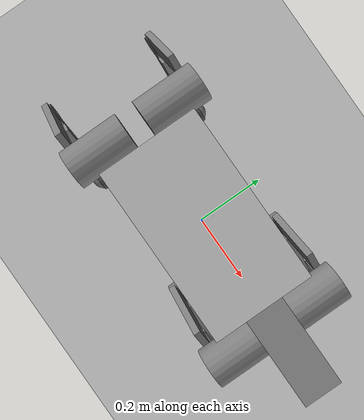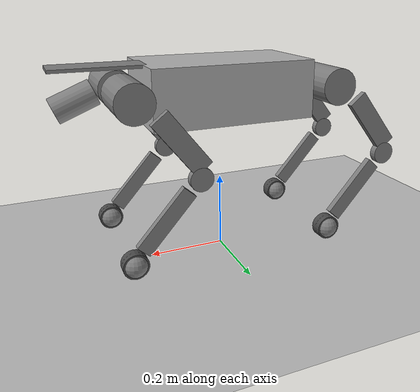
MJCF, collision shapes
<mujoco model="ayg">
  <compiler angle="radian" meshdir="../../meshes/1.3"/>

  <option timestep="0.001" iterations="50" solver="Newton" gravity="0 0 -9.81"
          noslip_iterations="5"/>

  <default>
    <joint damping="0" armature="0.02" frictionloss="0.2"/>
    <geom friction="1.5 0.005 0.001" condim="6" contype="1" conaffinity="1" solimp="0.9 0.95 0.001" solref="0.02 1"/>
    <motor ctrllimited="true"/>
  </default>

  <asset>
    <texture type="2d" name="grid" builtin="checker" rgb1="0.9 0.9 0.9" rgb2="0.6 0.6 0.6"
             width="512" height="512"/>
    <material name="grid_mat" texture="grid" texrepeat="8 8" reflectance="0.2"/>

    <mesh name="Base" file="Base.STL"/>
    <mesh name="Head" file="Head.STL"/>
    <mesh name="LF_Hip" file="LF_Hip.STL"/>
    <mesh name="RF_Hip" file="RF_Hip.STL"/>
    <mesh name="LH_Hip" file="LH_Hip.STL"/>
    <mesh name="RH_Hip" file="RH_Hip.STL"/>
    <mesh name="L_Thigh" file="L_Thigh.STL"/>
    <mesh name="R_Thigh" file="R_Thigh.STL"/>
    <mesh name="Shank" file="Shank.STL"/>
  </asset>

  <worldbody>
    <light pos="0 0 3" dir="0 0 -1" diffuse="0.8 0.8 0.8" specular="0.3 0.3 0.3"/>
    <geom name="floor" type="plane" size="5 5 0.1" material="grid_mat" contype="1" conaffinity="1"
          friction="1.5 0.005 0.001" condim="6" solimp="0.9 0.95 0.001" solref="0.02 1"/>

    <!-- Spawn height clears the zero-joint pose: the 1.3 leg puts the feet 0.4245 m
         below Base at all-zero joints (was 0.341 m), so 0.40 would start the model
         underground. -->
    <body name="Base" pos="0 0 0.46">
      <freejoint name="float_base"/>
      <!-- Batteries are lumped into Base (rigidly fixed inside the chassis). -->
      <inertial pos="-0.0005817 -1.9934e-05 -0.0020067" mass="11.02"
                fullinertia="0.035479 0.032555 0.055613 -3.4801e-06 8.3812e-05 0.00043953"/>
      <geom name="Base_visual" type="mesh" mesh="Base" rgba="0.69804 0.69804 0.69804 1"
            contype="0" conaffinity="0" group="1"/>
      <geom name="Base_collision" type="box" size="0.2115 0.1195 0.075" pos="-0.001 0 -0.013"
            rgba="0.69804 0.69804 0.69804 1" group="3"/>
      <site name="imu_site" pos="0 0 -0.02883" size="0.001" rgba="0 1 0 1"/>

      <!-- ==================== Head (LiDAR mount) ==================== -->
      <body name="Head" pos="0.199 0 0.05">
        <inertial pos="0.13017 -9.7488e-06 -0.025308" mass="0.81801"
                  fullinertia="0.00052732 0.0012906 0.0015175 -3.3579e-08 -3.8961e-05 -4.1369e-08"/>
        <geom name="Head_visual" type="mesh" mesh="Head" rgba="0.69804 0.69804 0.69804 1"
              contype="0" conaffinity="0" group="1"/>
        <geom name="Head_handle_collision" type="box" size="0.113 0.045 0.0040"
              pos="0.113 0 0.008" group="3"/>
        <geom name="Head_lidar_collision" type="cylinder" size="0.033"
              fromto="0.12185 0 -0.05077  0.21692 0 -0.09038" group="3"/>
        <site name="lidar_site" pos="0.143852 0 -0.059938"
              quat="0.39223227 -0.58834841 0.58834841 -0.39223227"
              size="0.002" rgba="0 0 1 1"/>
      </body>

      <!-- ==================== Left Front Leg ==================== -->
      <body name="LF_Hip" pos="0.201 0.056 0">
        <inertial pos="0.06215 -0.0031317 -0.00034351" mass="1.0451"
                  fullinertia="0.00069698 0.0012902 0.00084229 -1.5149e-06 1.4486e-05 -1.5206e-06"/>
        <joint name="LF_HAA" axis="1 0 0" range="-0.5236 0.5236"/>
        <geom name="LF_Hip_visual" type="mesh" mesh="LF_Hip" rgba="0.69804 0.69804 0.69804 1"
              contype="0" conaffinity="0" group="1"/>
        <geom name="LF_Hip_collision" type="cylinder" size="0.047" fromto="0.06 -0.0332 -0.0045  0.06 0.1118 -0.0045" group="3"/>

        <body name="LF_Thigh" pos="0.065 0.0215 0">
          <inertial pos="-0.024065 0.049498 -0.02468" mass="1.6083"
                    fullinertia="0.004797 0.0083583 0.0043329 0.00038562 -0.0032535 0.00037881"/>
          <joint name="LF_HFE" axis="0 -1 0" range="-2.0412 3.3693"/>
          <geom name="LF_Thigh_visual" type="mesh" mesh="L_Thigh" rgba="0.69804 0.69804 0.69804 1"
                contype="0" conaffinity="0" group="1"/>
          <geom name="LF_Thigh_collision" type="box" size="0.026 0.008 0.085"
                pos="-0.1121 0.0731 -0.1091" quat="0.32593 0 -0.94539 0" group="3"/>

          <body name="LF_Shank" pos="-0.15715 0.057518 -0.20082">
            <inertial pos="0.079065 0.015593 -0.077092" mass="0.28461"
                      fullinertia="0.0013467 0.0026227 0.0012937 3.9114e-12 0.0012546 -1.247e-11"/>
            <joint name="LF_KFE" axis="0 -1 0" range="-0.56374 1.4085"/>
            <geom name="LF_Shank_visual" type="mesh" mesh="Shank" rgba="0.69804 0.69804 0.69804 1"
                  contype="0" conaffinity="0" group="1"/>
            <geom name="LF_Shank_collision" type="box" size="0.020 0.0085 0.090"
                  pos="0.0897 0.015582 -0.0938" quat="0.35556 0 0.93465 0" group="3"/>
            <geom name="LF_Knee_collision" type="cylinder" size="0.030" fromto="0 0.006082 0  0 0.025082 0" group="3"/>

            <body name="LF_Foot" pos="0.17048 0.015582 -0.19164">
              <inertial pos="0 0 0" mass="0.05447"
                        fullinertia="1.8306e-05 2.7889e-05 1.8306e-05 0 0 0"/>
              <geom name="LF_Foot_visual" type="cylinder" size="0.032 0.0155" quat="0.70711 0.70711 0 0"
                    rgba="0.29804 0.29804 0.29804 1" contype="0" conaffinity="0" group="1"/>
              <geom name="LF_Foot_collision" type="sphere" size="0.032" friction="2.0 0.01 0.001" group="3"/>
              <site name="LF_Foot_contact" pos="0 0 0" size="0.001" rgba="1 0 0 1"/>
            </body>
          </body>
        </body>
      </body>

      <!-- ==================== Right Front Leg ==================== -->
      <body name="RF_Hip" pos="0.201 -0.056 0">
        <inertial pos="0.06215 0.0031317 -0.00034351" mass="1.0451"
                  fullinertia="0.00069698 0.0012902 0.00084229 1.5149e-06 1.4486e-05 1.5206e-06"/>
        <joint name="RF_HAA" axis="1 0 0" range="-0.5236 0.5236"/>
        <geom name="RF_Hip_visual" type="mesh" mesh="RF_Hip" rgba="0.69804 0.69804 0.69804 1"
              contype="0" conaffinity="0" group="1"/>
        <geom name="RF_Hip_collision" type="cylinder" size="0.047" fromto="0.06 -0.1118 -0.0045  0.06 0.0332 -0.0045" group="3"/>

        <body name="RF_Thigh" pos="0.065 -0.0215 0">
          <inertial pos="-0.024065 -0.049498 -0.02468" mass="1.6083"
                    fullinertia="0.004797 0.0083583 0.0043329 -0.00038562 -0.0032535 -0.00037881"/>
          <joint name="RF_HFE" axis="0 -1 0" range="-2.0412 3.3693"/>
          <geom name="RF_Thigh_visual" type="mesh" mesh="R_Thigh" rgba="0.69804 0.69804 0.69804 1"
                contype="0" conaffinity="0" group="1"/>
          <geom name="RF_Thigh_collision" type="box" size="0.026 0.008 0.085"
                pos="-0.1121 -0.0731 -0.1091" quat="0.32593 0 -0.94539 0" group="3"/>

          <body name="RF_Shank" pos="-0.15715 -0.057518 -0.20082">
            <inertial pos="0.079065 -0.015593 -0.077092" mass="0.28461"
                      fullinertia="0.0013467 0.0026227 0.0012937 3.9114e-12 0.0012546 -1.247e-11"/>
            <joint name="RF_KFE" axis="0 -1 0" range="-0.56374 1.4085"/>
            <geom name="RF_Shank_visual" type="mesh" mesh="Shank" pos="0 -0.031164 0" rgba="0.69804 0.69804 0.69804 1"
                  contype="0" conaffinity="0" group="1"/>
            <geom name="RF_Shank_collision" type="box" size="0.020 0.0085 0.090"
                  pos="0.0897 -0.015582 -0.0938" quat="0.35556 0 0.93465 0" group="3"/>
            <geom name="RF_Knee_collision" type="cylinder" size="0.030" fromto="0 -0.025082 0  0 -0.006082 0" group="3"/>

            <body name="RF_Foot" pos="0.17048 -0.015582 -0.19164">
              <inertial pos="0 0 0" mass="0.05447"
                        fullinertia="1.8306e-05 2.7889e-05 1.8306e-05 0 0 0"/>
              <geom name="RF_Foot_visual" type="cylinder" size="0.032 0.0155" quat="0.70711 0.70711 0 0"
                    rgba="0.29804 0.29804 0.29804 1" contype="0" conaffinity="0" group="1"/>
              <geom name="RF_Foot_collision" type="sphere" size="0.032" friction="2.0 0.01 0.001" group="3"/>
              <site name="RF_Foot_contact" pos="0 0 0" size="0.001" rgba="1 0 0 1"/>
            </body>
          </body>
        </body>
      </body>

      <!-- ==================== Left Hind Leg ==================== -->
      <body name="LH_Hip" pos="-0.201 0.056 0">
        <inertial pos="-0.06215 -0.0031317 -0.00034351" mass="1.0451"
                  fullinertia="0.00069698 0.0012902 0.00084229 1.5149e-06 -1.4486e-05 -1.5206e-06"/>
        <joint name="LH_HAA" axis="1 0 0" range="-0.5236 0.8203"/>
        <geom name="LH_Hip_visual" type="mesh" mesh="LH_Hip" rgba="0.69804 0.69804 0.69804 1"
              contype="0" conaffinity="0" group="1"/>
        <geom name="LH_Hip_collision" type="cylinder" size="0.047" fromto="-0.06 -0.0332 -0.0045  -0.06 0.1118 -0.0045" group="3"/>

        <body name="LH_Thigh" pos="-0.065 0.0215 0">
          <inertial pos="-0.024065 0.049498 -0.02468" mass="1.6083"
                    fullinertia="0.004797 0.0083583 0.0043329 0.00038562 -0.0032535 0.00037881"/>
          <joint name="LH_HFE" axis="0 -1 0" range="-2.8266 2.5839"/>
          <geom name="LH_Thigh_visual" type="mesh" mesh="L_Thigh" rgba="0.69804 0.69804 0.69804 1"
                contype="0" conaffinity="0" group="1"/>
          <geom name="LH_Thigh_collision" type="box" size="0.026 0.008 0.085"
                pos="-0.1121 0.0731 -0.1091" quat="0.32593 0 -0.94539 0" group="3"/>

          <body name="LH_Shank" pos="-0.15715 0.057518 -0.20082">
            <inertial pos="0.079065 0.015593 -0.077092" mass="0.28461"
                      fullinertia="0.0013467 0.0026227 0.0012937 3.9114e-12 0.0012546 -1.247e-11"/>
            <joint name="LH_KFE" axis="0 -1 0" range="-0.56374 1.4085"/>
            <geom name="LH_Shank_visual" type="mesh" mesh="Shank" rgba="0.69804 0.69804 0.69804 1"
                  contype="0" conaffinity="0" group="1"/>
            <geom name="LH_Shank_collision" type="box" size="0.020 0.0085 0.090"
                  pos="0.0897 0.015582 -0.0938" quat="0.35556 0 0.93465 0" group="3"/>
            <geom name="LH_Knee_collision" type="cylinder" size="0.030" fromto="0 0.006082 0  0 0.025082 0" group="3"/>

            <body name="LH_Foot" pos="0.17048 0.015582 -0.19164">
              <inertial pos="0 0 0" mass="0.05447"
                        fullinertia="1.8306e-05 2.7889e-05 1.8306e-05 0 0 0"/>
              <geom name="LH_Foot_visual" type="cylinder" size="0.032 0.0155" quat="0.70711 0.70711 0 0"
                    rgba="0.29804 0.29804 0.29804 1" contype="0" conaffinity="0" group="1"/>
              <geom name="LH_Foot_collision" type="sphere" size="0.032" friction="2.0 0.01 0.001" group="3"/>
              <site name="LH_Foot_contact" pos="0 0 0" size="0.001" rgba="1 0 0 1"/>
            </body>
          </body>
        </body>
      </body>

      <!-- ==================== Right Hind Leg ==================== -->
      <body name="RH_Hip" pos="-0.201 -0.056 0">
        <inertial pos="-0.06215 0.0031317 -0.00034351" mass="1.0451"
                  fullinertia="0.00069698 0.0012902 0.00084229 -1.5149e-06 -1.4486e-05 1.5206e-06"/>
        <joint name="RH_HAA" axis="1 0 0" range="-0.8203 0.5236"/>
        <geom name="RH_Hip_visual" type="mesh" mesh="RH_Hip" rgba="0.69804 0.69804 0.69804 1"
              contype="0" conaffinity="0" group="1"/>
        <geom name="RH_Hip_collision" type="cylinder" size="0.047" fromto="-0.06 -0.1118 -0.0045  -0.06 0.0332 -0.0045" group="3"/>

        <body name="RH_Thigh" pos="-0.065 -0.0215 0">
          <inertial pos="-0.024065 -0.049498 -0.02468" mass="1.6083"
                    fullinertia="0.004797 0.0083583 0.0043329 -0.00038562 -0.0032535 -0.00037881"/>
          <joint name="RH_HFE" axis="0 -1 0" range="-2.8266 2.5839"/>
          <geom name="RH_Thigh_visual" type="mesh" mesh="R_Thigh" rgba="0.69804 0.69804 0.69804 1"
                contype="0" conaffinity="0" group="1"/>
          <geom name="RH_Thigh_collision" type="box" size="0.026 0.008 0.085"
                pos="-0.1121 -0.0731 -0.1091" quat="0.32593 0 -0.94539 0" group="3"/>

          <body name="RH_Shank" pos="-0.15715 -0.057518 -0.20082">
            <inertial pos="0.079065 -0.015593 -0.077092" mass="0.28461"
                      fullinertia="0.0013467 0.0026227 0.0012937 3.9114e-12 0.0012546 -1.247e-11"/>
            <joint name="RH_KFE" axis="0 -1 0" range="-0.56374 1.4085"/>
            <geom name="RH_Shank_visual" type="mesh" mesh="Shank" pos="0 -0.031164 0" rgba="0.69804 0.69804 0.69804 1"
                  contype="0" conaffinity="0" group="1"/>
            <geom name="RH_Shank_collision" type="box" size="0.020 0.0085 0.090"
                  pos="0.0897 -0.015582 -0.0938" quat="0.35556 0 0.93465 0" group="3"/>
            <geom name="RH_Knee_collision" type="cylinder" size="0.030" fromto="0 -0.025082 0  0 -0.006082 0" group="3"/>

            <body name="RH_Foot" pos="0.17048 -0.015582 -0.19164">
              <inertial pos="0 0 0" mass="0.05447"
                        fullinertia="1.8306e-05 2.7889e-05 1.8306e-05 0 0 0"/>
              <geom name="RH_Foot_visual" type="cylinder" size="0.032 0.0155" quat="0.70711 0.70711 0 0"
                    rgba="0.29804 0.29804 0.29804 1" contype="0" conaffinity="0" group="1"/>
              <geom name="RH_Foot_collision" type="sphere" size="0.032" friction="2.0 0.01 0.001" group="3"/>
              <site name="RH_Foot_contact" pos="0 0 0" size="0.001" rgba="1 0 0 1"/>
            </body>
          </body>
        </body>
      </body>
    </body>
  </worldbody>

  <actuator>
    <!-- Left Front -->
    <motor name="LF_HAA_motor" joint="LF_HAA" ctrlrange="-50 50" gear="1"/>
    <motor name="LF_HFE_motor" joint="LF_HFE" ctrlrange="-50 50" gear="1"/>
    <motor name="LF_KFE_motor" joint="LF_KFE" ctrlrange="-50 50" gear="1"/>
    <!-- Right Front -->
    <motor name="RF_HAA_motor" joint="RF_HAA" ctrlrange="-50 50" gear="1"/>
    <motor name="RF_HFE_motor" joint="RF_HFE" ctrlrange="-50 50" gear="1"/>
    <motor name="RF_KFE_motor" joint="RF_KFE" ctrlrange="-50 50" gear="1"/>
    <!-- Left Hind -->
    <motor name="LH_HAA_motor" joint="LH_HAA" ctrlrange="-50 50" gear="1"/>
    <motor name="LH_HFE_motor" joint="LH_HFE" ctrlrange="-50 50" gear="1"/>
    <motor name="LH_KFE_motor" joint="LH_KFE" ctrlrange="-50 50" gear="1"/>
    <!-- Right Hind -->
    <motor name="RH_HAA_motor" joint="RH_HAA" ctrlrange="-50 50" gear="1"/>
    <motor name="RH_HFE_motor" joint="RH_HFE" ctrlrange="-50 50" gear="1"/>
    <motor name="RH_KFE_motor" joint="RH_KFE" ctrlrange="-50 50" gear="1"/>
  </actuator>

  <sensor>
    <!-- IMU sensors on Base -->
    <accelerometer name="imu_acc" site="imu_site"/>
    <gyro name="imu_gyro" site="imu_site"/>

    <!-- Foot contact sensors -->
    <touch name="LF_Foot_touch" site="LF_Foot_contact"/>
    <touch name="RF_Foot_touch" site="RF_Foot_contact"/>
    <touch name="LH_Foot_touch" site="LH_Foot_contact"/>
    <touch name="RH_Foot_touch" site="RH_Foot_contact"/>

    <!-- Joint position/velocity sensors -->
    <jointpos name="LF_HAA_pos" joint="LF_HAA"/>
    <jointpos name="LF_HFE_pos" joint="LF_HFE"/>
    <jointpos name="LF_KFE_pos" joint="LF_KFE"/>
    <jointpos name="RF_HAA_pos" joint="RF_HAA"/>
    <jointpos name="RF_HFE_pos" joint="RF_HFE"/>
    <jointpos name="RF_KFE_pos" joint="RF_KFE"/>
    <jointpos name="LH_HAA_pos" joint="LH_HAA"/>
    <jointpos name="LH_HFE_pos" joint="LH_HFE"/>
    <jointpos name="LH_KFE_pos" joint="LH_KFE"/>
    <jointpos name="RH_HAA_pos" joint="RH_HAA"/>
    <jointpos name="RH_HFE_pos" joint="RH_HFE"/>
    <jointpos name="RH_KFE_pos" joint="RH_KFE"/>

    <jointvel name="LF_HAA_vel" joint="LF_HAA"/>
    <jointvel name="LF_HFE_vel" joint="LF_HFE"/>
    <jointvel name="LF_KFE_vel" joint="LF_KFE"/>
    <jointvel name="RF_HAA_vel" joint="RF_HAA"/>
    <jointvel name="RF_HFE_vel" joint="RF_HFE"/>
    <jointvel name="RF_KFE_vel" joint="RF_KFE"/>
    <jointvel name="LH_HAA_vel" joint="LH_HAA"/>
    <jointvel name="LH_HFE_vel" joint="LH_HFE"/>
    <jointvel name="LH_KFE_vel" joint="LH_KFE"/>
    <jointvel name="RH_HAA_vel" joint="RH_HAA"/>
    <jointvel name="RH_HFE_vel" joint="RH_HFE"/>
    <jointvel name="RH_KFE_vel" joint="RH_KFE"/>
  </sensor>
</mujoco>
